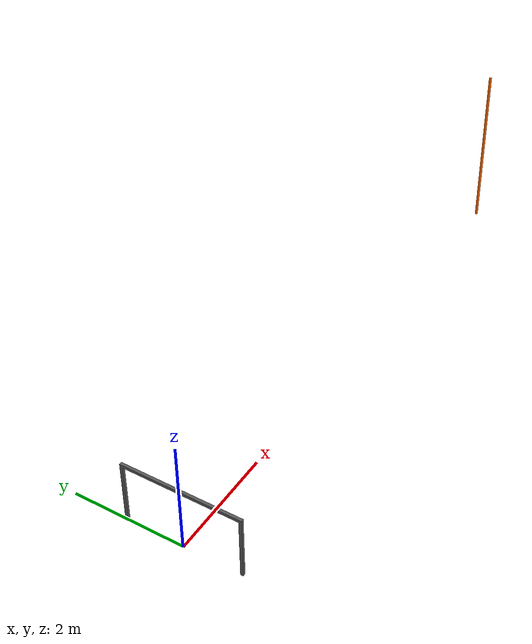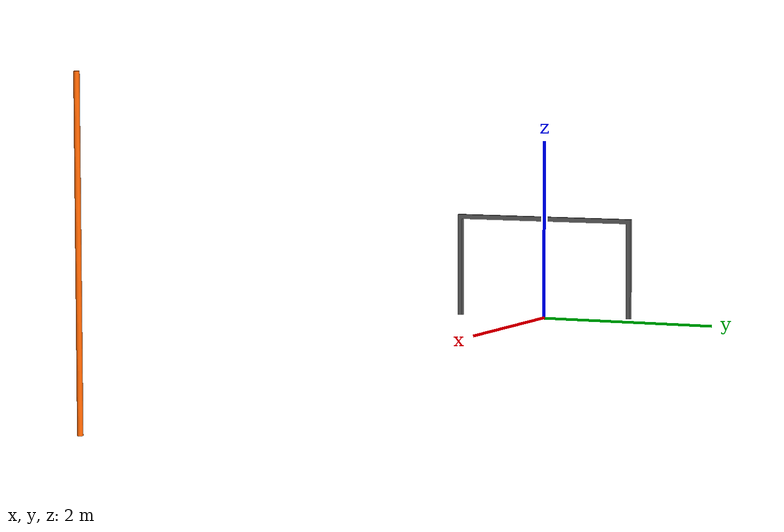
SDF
<?xml version="1.0"?>
<!-- Pre-qual course: bb_worlds gate mesh + Rustoleum neon orange pillar. -->
<sdf version="1.9">
  <model name="marv_prequal_course_bb">
    <static>true</static>
    <link name="link">
      <visual name="gate">
        <pose>0 0 0 1.57079632679 0 0</pose>
        <geometry>
          <mesh>
            <uri>model://robosub25/prequali_task/gate.dae</uri>
          </mesh>
        </geometry>
      </visual>
      <collision name="gate_collision">
        <pose>0 0 0 1.57079632679 0 0</pose>
        <geometry>
          <mesh>
            <uri>model://robosub25/prequali_task/gate.dae</uri>
          </mesh>
        </geometry>
      </collision>
      <visual name="pillar">
        <pose>10 0 0 1.57079632679 0 0</pose>
        <geometry>
          <mesh>
            <uri>model://robosub25/prequali_task/pillar.dae</uri>
          </mesh>
        </geometry>
        <material>
          <!-- Rustoleum Neon Orange (fluorescent) -->
          <ambient>0.95 0.32 0.0 1</ambient>
          <diffuse>1.0 0.40 0.0 1</diffuse>
          <specular>0.2 0.2 0.2 1</specular>
          <emissive>0.35 0.10 0.0 1</emissive>
        </material>
      </visual>
      <collision name="pillar_collision">
        <pose>10 0 0 1.57079632679 0 0</pose>
        <geometry>
          <mesh>
            <uri>model://robosub25/prequali_task/pillar.dae</uri>
          </mesh>
        </geometry>
      </collision>
    </link>
  </model>
</sdf>
